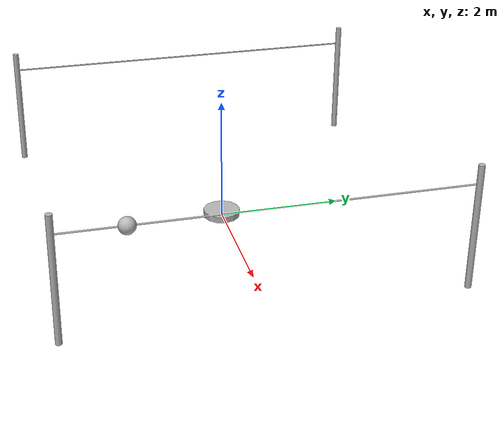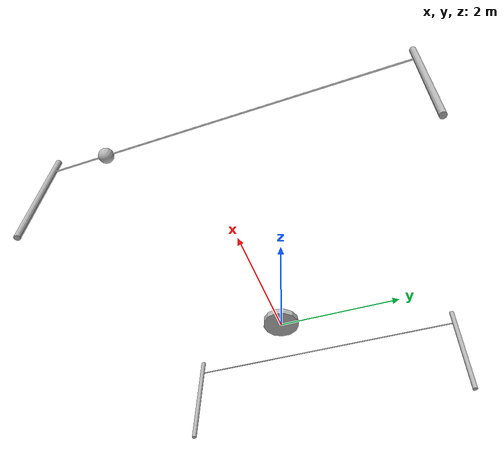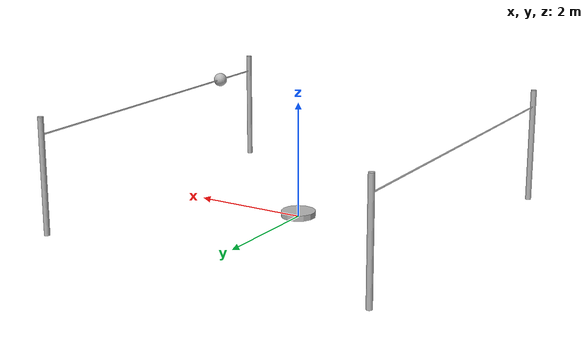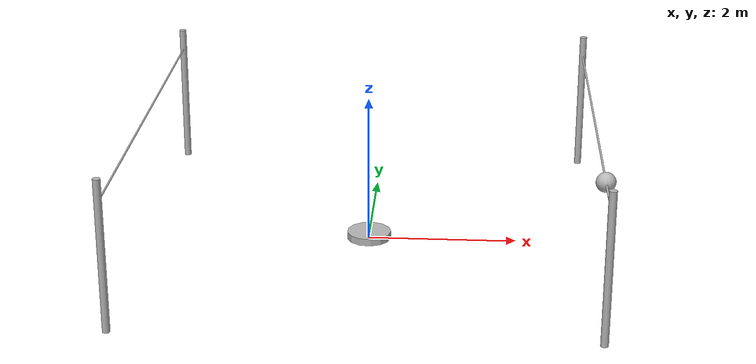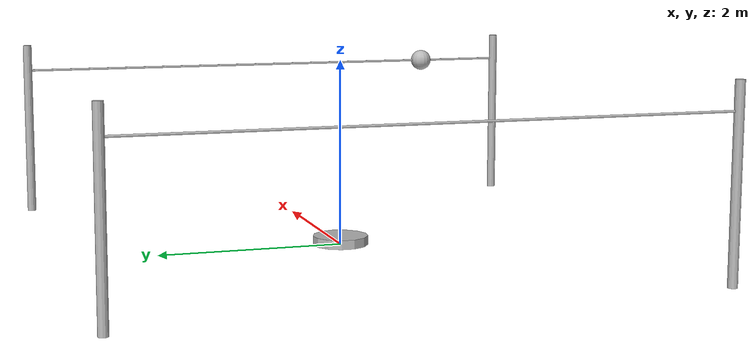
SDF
<?xml version="1.0" ?>
<sdf version="1.8">

<model name="poles_wires">
      <static>true</static>

      <link name="poles_wires_link">
        <pose>0 0 0 0 0 0</pose>

        <visual name="poles_wires_visual">
          <geometry>
            <mesh>
              <uri>model://poles_wires/meshes/fase_2.obj</uri>
            </mesh>
          </geometry>
        </visual>

        <collision name="poles_wires_collision">
          <geometry>
            <mesh>
              <uri>model://poles_wires/meshes/fase_2.obj</uri>
            </mesh>
          </geometry>
        </collision>
      </link>
    </model>

</sdf>
